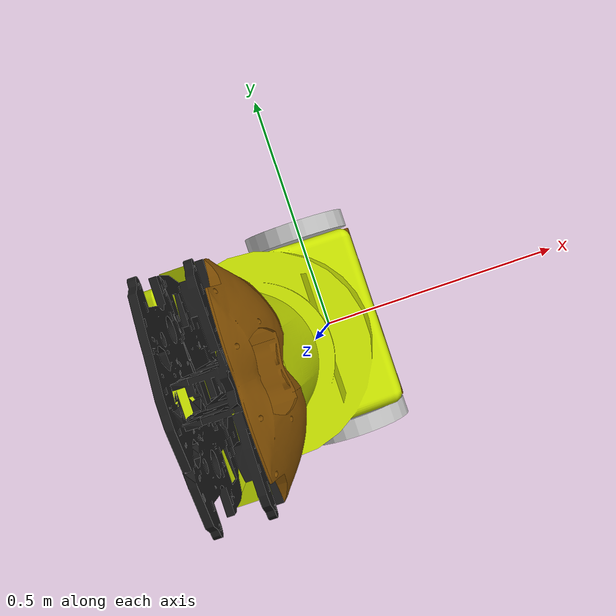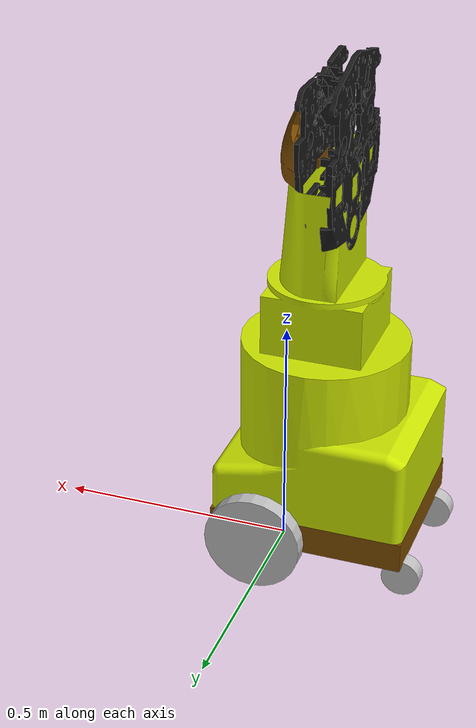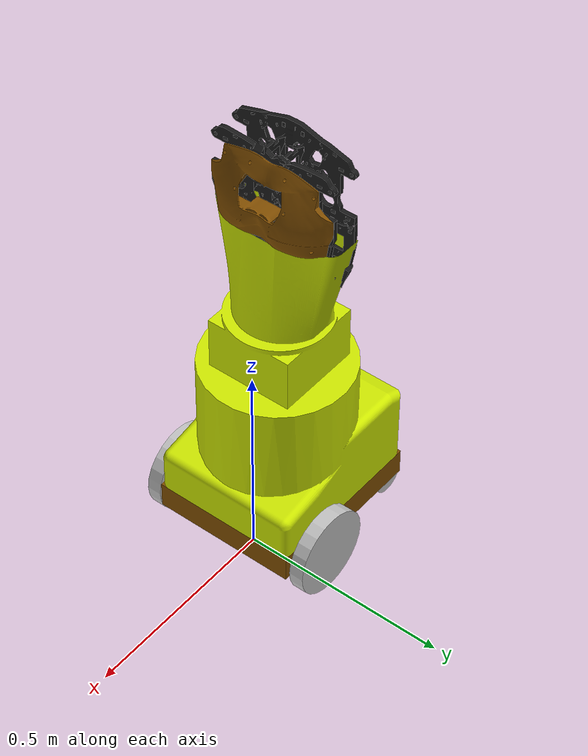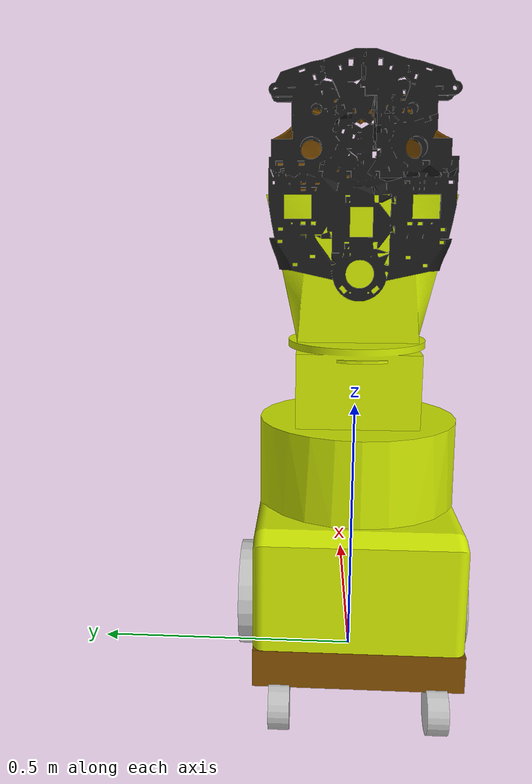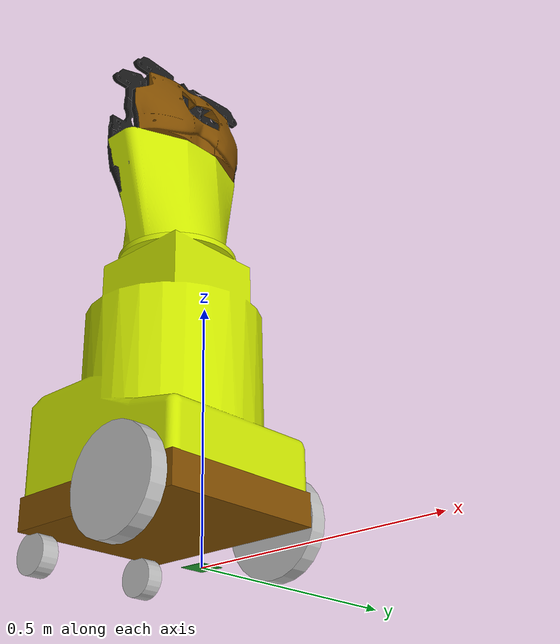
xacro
<?xml version="1.0"?>

<!-- XML namespaces -->
  <robot name="robbie" xmlns:xacro="http://www.ros.org/wiki/xacro">

    <property name="PI" value="3.1415" />
    <property name="M_PI" value="3.14159"/>
    <property name="M_SCALE" value="0.001"/>
    <property name="MESH_EXT" value="stl"/>
    <xacro:include filename="$(find robbie_description)/urdf/robbie_hardware.xacro" />

  <gazebo>
  <plugin name="differential_drive_controller" filename="libgazebo_ros_diff_drive.so">
    <alwaysOn>true</alwaysOn>
    <updateRate>20</updateRate>
    <leftJoint>base_link_left_wheel_joint</leftJoint>
    <rightJoint>base_link_right_wheel_joint</rightJoint>
    <wheelSeparation>0.430</wheelSeparation>
    <wheelDiameter>0.2</wheelDiameter>
    <torque>20</torque>
    <commandTopic>cmd_vel</commandTopic>
    <odometryTopic>odom</odometryTopic>
    <odometryFrame>odom</odometryFrame>
    <robotBaseFrame>base_footprint</robotBaseFrame>
    <broadcastTF>true</broadcastTF>
    <robotNamespace>robbie</robotNamespace>
    <publishWheelTF>true</publishWheelTF>
    <publishWheelJointState>true</publishWheelJointState>
  </plugin>
</gazebo>

   <!-- Import all Gazebo-customization elements, including Gazebo colors -->
  <xacro:include filename="$(find robbie_description)/urdf/robbie.gazebo" />

<xacro:my_box name="base_link" lwh="0.41 0.35 0.065" xyz="0 0 -0.032" rpy="0 0 0" mass="0.1" material="Gazebo/FlatBlack">
	        <xacro:gold />
        </xacro:my_box>

 <link name="base_footprint">
      <visual>
        <origin xyz="0 0 0" rpy="0 0 0" />
        <geometry>
          <box size="0.05 0.05 0.001" />
        </geometry>
        <material name="TransparentGreen" />
      </visual>
  </link>

  <xacro:my_cylinder name="left_wheel" l="0.035" r="0.1025" xyz="0 0 0" rpy="1.57 0 0" mass="0.1" material="Gazebo/Grey">
		<xacro:grey1 />
	</xacro:my_cylinder>

  <xacro:my_cylinder name="right_wheel" l="0.035" r="0.1025" xyz="0 0 0" rpy="1.57 0 0" mass="0.1" material="Gazebo/Grey">
		<xacro:grey1 />
	</xacro:my_cylinder>

  <xacro:my_cylinder name="castor_wheel_l" l="0.035" r="0.04" xyz="0 0 0" rpy="1.57 0 0" mass="0.1" material="Gazebo/Grey">
		<xacro:grey1 />
	</xacro:my_cylinder>

  <xacro:my_cylinder name="castor_wheel_r" l="0.035" r="0.04" xyz="0 0 0" rpy="1.57 0 0" mass="0.1" material="Gazebo/Grey">
		<xacro:grey1 />
	</xacro:my_cylinder>

  <link name="deck_link" >
   <visual>
      <geometry>
        <mesh filename="package://robbie_description/meshes/drive_base.stl" scale="${M_SCALE} ${M_SCALE} ${M_SCALE}"/>
      </geometry>
         <xacro:yellow2/>
      <origin rpy="0 0 1.57" xyz=" 0.015 -0.175 -0"/>
    </visual>
    <xacro:default_inertial mass="1.0" />

  </link>

 <xacro:my_cylinder name="pan_link" l="0.005" r="0.1" xyz="0.0 0 -0.02" rpy="0 0 0" mass="0.2" material="Gazebo/Grey">
			<xacro:yellow2 />
		</xacro:my_cylinder>

  <!-- ##############################   upper torso   ##################333333-->

<link name="lower_torso" >
   <visual>
      <geometry>
        <mesh filename="package://robbie_description/meshes/chest_lower.stl" scale="${M_SCALE} ${M_SCALE} ${M_SCALE}"/>
      </geometry>
         <xacro:yellow2/>
      <origin rpy="0 0 1.57" xyz="0 0 0"/>
    </visual>
  </link>

<link name="upper_torso" >
   <visual>
      <geometry>
        <mesh filename="package://robbie_description/meshes/chest.stl" scale="${M_SCALE} ${M_SCALE} ${M_SCALE}"/>
      </geometry>
         <xacro:black/>
      <origin rpy="0 0 -1.57" xyz="0.04 0 -0.15"/>
    </visual>
  </link>

<link name="upper_chest" >
   <visual>
      <geometry>
        <mesh filename="package://robbie_description/meshes/chest_cover.stl" scale="${M_SCALE} ${M_SCALE} ${M_SCALE}"/>
      </geometry>
         <xacro:gold/>
      <origin rpy="0 0 1.57" xyz="0 0 -0.085"/>
    </visual>
  </link>

<!-- ##############################   joints ##################333333-->
<joint name="base_footprint_joint" type="fixed">
    	<parent link="base_footprint" />
    	<child link="base_link" />
    	<origin xyz="-0.1 0 0.15" rpy="0 0 0" />
	</joint>

<joint name="base_link_joint" type="fixed">
    	<parent link="base_link" />
    	<child link="deck_link" />
    	<origin xyz="0 0 0.138" rpy="0 0 0" />
	</joint>

  <joint name="base_link_left_wheel_joint" type="continuous">
    	<parent link="base_link" />
    	<child link="left_wheel" />
    	<origin xyz="0.1 -0.2 -0.04" rpy="0 0 0" />
	</joint>

  <joint name="base_link_right_wheel_joint" type="continuous">
    	<parent link="base_link" />
    	<child link="right_wheel" />
    	<origin xyz="0.1 0.2 -0.04" rpy="0 0 0" />
	</joint>

  <joint name="castor_wheel_joint_l" type="fixed">
    	<parent link="base_link" />
    	<child link="castor_wheel_l" />
    	<origin xyz="-0.20 -0.13 -0.1" rpy="0 0 0" />
	</joint>

  <joint name="castor_wheel_joint_r" type="fixed">
    	<parent link="base_link" />
    	<child link="castor_wheel_r" />
    	<origin xyz="-0.20 0.13 -0.1" rpy="0 0 0" />
        </joint>

  <!--#################  Upper torso#############################-->
 <joint name="pan_joint" type="revolute">
    	<parent link="deck_link" />
    	<child link="pan_link" />
    	<origin xyz="0 0 0.35" rpy="0 0 0" />
        <axis xyz="0 0 1" />
        <limit lower="-1" upper="1" effort="10" velocity="0" />
	</joint>

  <joint name="torso_lower_link" type="fixed">
    	<parent link="pan_link" />
    	<child link="lower_torso" />
    	<origin xyz="0.0 0.005 0." rpy="0 0 0" />
	</joint>

  <joint name="torso_link" type="fixed">
    	<parent link="pan_link" />
    	<child link="upper_torso" />
    	<origin xyz="0.0 0.005 0.465" rpy="0 0 0" />
	</joint>

<joint name="chest_link" type="fixed">
    	<parent link="upper_torso" />
    	<child link="upper_chest" />
    	<origin xyz="0.065 0 -0.04" rpy="0 0 0" />
	</joint>

<!-- Transmission is important to link the joints and the controller -->
<transmission name="right_wheel_joint_trans">
	<type>transmission_interface/SimpleTransmission</type>
	<joint name="base_link_right_wheel_joint" />
        <hardwareInterface>EffortJointInterface</hardwareInterface>
<actuator name="base_link_right_wheel_joint_motor">
	<hardwareInterface>EffortJointInterface</hardwareInterface>
	<mechanicalReduction>1</mechanicalReduction>
</actuator>
</transmission>

<transmission name="left_wheel_joint_trans">
<type>transmission_interface/SimpleTransmission</type>
<joint name="base_link_left_wheel_joint" />
<hardwareInterface>EffortJointInterface</hardwareInterface>
<actuator name="base_link_right_wheel_joint_motor">
<hardwareInterface>EffortJointInterface</hardwareInterface>
<mechanicalReduction>1</mechanicalReduction>
</actuator>
</transmission>

<gazebo reference="robbie">
  	</gazebo>

</robot>

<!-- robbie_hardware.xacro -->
<robot name="robbie" xmlns:xacro="http://ros.org/wiki/xacro">

  <!-- ============================  A Few Color Macros  ============================ -->

	<xacro:macro name="black">
		<material name="black">
			<color rgba="0.1 0.1 0.1 1.0"/>
		</material>
	</xacro:macro>

	<xacro:macro name="White">
		<material name="White">
			<color rgba="1.0 1.0 1.0 1.0"/>
		</material>
	</xacro:macro>

	<xacro:macro name="grey1">
		<material name="grey1">
			<color rgba="0.75 0.75 0.75 1.0"/>
		</material>
	</xacro:macro>

	<xacro:macro name="grey2">
		<material name="grey2">
			<color rgba="0.6 0.6 0.6 1.0"/>
		</material>
	</xacro:macro>

	<xacro:macro name="grey3">
		<material name="grey3">
			<color rgba="0.8 0.8 0.8 1.0"/>
		</material>
	</xacro:macro>

	<xacro:macro name="ax12_color">
		<material name="ax12_color">
			<color rgba="0.2 0.2 0.2 1.0"/>
		</material>
	</xacro:macro>

	<xacro:macro name="bracket_color">
		<material name="bracket_color">
			<color rgba="0.9 0.9 0.9 1.0"/>
		</material>
	</xacro:macro>

        <xacro:macro name="cyan1">
		<material name="cyan1">
			<color rgba="0 0.9 0.9 1.0"/>
		</material>
	</xacro:macro>

	<xacro:macro name="cyan2">
		<material name="cyan2">
	     <color rgba="0 0.7 0.7 1.0"/>
		</material>
	</xacro:macro>

	<xacro:macro name="cyan3">
		<material name="cyan3">
	     <color rgba="0 0.5 0.5 1.0"/>
		</material>
	</xacro:macro>

        <xacro:macro name="yellow2">
		<material name="yellow2">
			<color rgba="0.8 0.9 0 1.0"/>
		</material>
	</xacro:macro>

        <xacro:macro name="gold">
		<material name="gold">
			<color rgba="0.5 0.3 0 1.0"/>
		</material>
	</xacro:macro>

	<xacro:macro name="green1">
		<material name="green1">
			<color rgba="0 1 0 1.0"/>
		</material>
	</xacro:macro>

	<xacro:macro name="green2">
		<material name="green2">
			<color rgba="0.1 0.8 0 1.0"/>
		</material>
	</xacro:macro>

        <xacro:macro name="blue1">
		<material name="blue1">
			<color rgba="0 0 0.9 1.0"/>
		</material>
	</xacro:macro>

        <xacro:macro name="ax12_color">
		<material name="ax12_color">
			<color rgba="0.1 0.1 0.1 1.0"/>
		</material>
	</xacro:macro>

 	<!-- ============================   A Few Shape Macros  ============================ -->
	<xacro:macro name="ax12" params="name xyz rpy">
		<link name="${name}">
			<visual>
				<origin xyz="${xyz}" rpy="${rpy}" />
				<geometry>
					<mesh filename="package://robbie_description/meshes/ax12_box2.${MESH_EXT}" scale="${M_SCALE} ${M_SCALE} ${M_SCALE}"/>
				</geometry>
				<xacro:ax12_color />
             </visual>

             <collision>
				<origin xyz="${xyz}" rpy="${rpy}" />
				<geometry>

					<mesh filename="package://robbie_description/meshes/ax12_box2.${MESH_EXT}" scale="${M_SCALE} ${M_SCALE} ${M_SCALE}"/>

				</geometry>
             </collision>
             <xacro:default_inertial mass="0.055" />
        </link>
        <xacro:default_gazebo name="${name}" material="Gazebo/FlatBlack" />
	</xacro:macro>

	<xacro:macro name="F2_bracket" params="name xyz rpy">
		<link name="${name}">
			<visual>
				<origin xyz="${xyz}" rpy="${rpy}" />
				<geometry>
          			<mesh filename="package://robbie_description/meshes/F2.${MESH_EXT}" scale="${M_SCALE} ${M_SCALE} ${M_SCALE}"/>
				</geometry>
				<xacro:bracket_color />
             </visual>
             <collision>
				<origin xyz="${xyz}" rpy="${rpy}" />
					<geometry>

          				<mesh filename="package://robbie_description/meshes/F2.${MESH_EXT}" scale="${M_SCALE} ${M_SCALE} ${M_SCALE}"/>

					</geometry>
             </collision>
             <xacro:default_inertial mass="0.02" />
        </link>
        <xacro:default_gazebo name="${name}" material="Gazebo/White" />
	</xacro:macro>

	<xacro:macro name="F3_bracket" params="name xyz rpy">
		<link name="${name}">
			<visual>
				<origin xyz="${xyz}" rpy="${rpy}" />
				<geometry>
          			<mesh filename="package://robbie_description/meshes/F3.${MESH_EXT}" scale="${M_SCALE} ${M_SCALE} ${M_SCALE}"/>
				</geometry><material name="grey1">
			<color rgba="0.75 0.75 0.75 1.0"/>
		</material>
				<xacro:bracket_color />
             </visual>
             <collision>
				<origin xyz="${xyz}" rpy="${rpy}" />
					<geometry>

          				<mesh filename="package://robbie_description/meshes/F3.${MESH_EXT}" scale="${M_SCALE} ${M_SCALE} ${M_SCALE}"/>

					</geometry>
             </collision>
             <xacro:default_inertial mass="0.01" />
        </link>
        <xacro:default_gazebo name="${name}" material="Gazebo/White" />
	</xacro:macro>

	<xacro:macro name="bracket_f3" params="name xyz rpy">
		<link name="${name}">
			<visual>
				<origin xyz="${xyz}" rpy="${rpy}" />
				<geometry>
					<box size="0.025 0.04 0.006" />
				</geometry>
				<xacro:bracket_color />
             </visual>
             <collision>
				<origin xyz="${xyz}" rpy="${rpy}" />
					<geometry>
						<box size="0.025 0.04 0.006" />
					</geometry>
             </collision>
             <xacro:default_inertial mass="0.02" />
        </link>
        <xacro:default_gazebo name="${name}" material="Gazebo/White" />
	</xacro:macro>

	<xacro:macro name="bracket2" params="name xyz rpy">
		<link name="${name}">
			<visual>
				<origin xyz="${xyz}" rpy="${rpy}" />
				<geometry>
					<box size="0.05 0.115 0.07" />
				</geometry>
				<xacro:bracket_color />
             </visual>
             <collision>
				<origin xyz="${xyz}" rpy="${rpy}" />
					<geometry>
					<box size="0.05 0.115 0.07" />
					</geometry>
             </collision>
             <xacro:default_inertial mass="0.01" />
        </link>
        <xacro:default_gazebo name="${name}" material="Gazebo/White" />
	</xacro:macro>

        <xacro:macro name="bracket3" params="name xyz rpy">
		<link name="${name}">
			<visual>
				<origin xyz="${xyz}" rpy="${rpy}" />
				<geometry>
					<box size="0.05 0.032 0.005" />
				</geometry>
				<xacro:bracket_color />
             </visual>
             <collision>
				<origin xyz="${xyz}" rpy="${rpy}" />
					<geometry>
					<box size="0.05 0.032 0.005" />
					</geometry>
             </collision>
             <xacro:default_inertial mass="0.01" />
        </link>
        <xacro:default_gazebo name="${name}" material="Gazebo/White" />
	</xacro:macro>

        <xacro:macro name="my_box" params="name lwh xyz rpy mass material *rviz_color">
		<link name="${name}">
			<visual>
				<origin xyz="${xyz}" rpy="${rpy}" />
				<geometry>
					<box size="${lwh}" />
				</geometry>
			    <xacro:insert_block name="rviz_color" />
             </visual>
             <collision>
				<origin xyz="${xyz}" rpy="${rpy}" />
					<geometry>
						<box size="${lwh}" />
					</geometry>
              <xacro:default_inertial mass="0.01" />
             </collision>

        </link>

        <xacro:default_gazebo name="${name}" material="${material}" />
	</xacro:macro>

	<xacro:macro name="my_cylinder" params="name l r xyz rpy mass material *rviz_color">
		<link name="${name}">
			<visual>
				<origin xyz="${xyz}" rpy="${rpy}" />
				<geometry>
					<cylinder length="${l}" radius="${r}" />
				</geometry>
            	<xacro:insert_block name="rviz_color" />
            </visual>
            <collision>
				<origin xyz="${xyz}" rpy="${rpy}" />
					<geometry>
						<cylinder length="${l}" radius="${r}" />
					</geometry>
            </collision>
            <xacro:default_inertial mass="${mass}" />
        </link>
        <xacro:default_gazebo name="${name}" material="${material}" />
	</xacro:macro>

    <xacro:macro name="default_inertial" params="mass">
		<inertial>
			<mass value="${mass}" />
			<inertia ixx="0.0001" ixy="0.0" ixz="0.0"
                     iyy="0.0001" iyz="0.0"
                     izz="0.0001" />
			</inertial>
    </xacro:macro>

    <xacro:macro name="default_gazebo" params="name material">
 		<gazebo reference="${name}">
			<material>${material}</material>
			<selfCollide>false</selfCollide>
			<turnGravityOff>false</turnGravityOff>
		</gazebo>
    </xacro:macro>

</robot>
